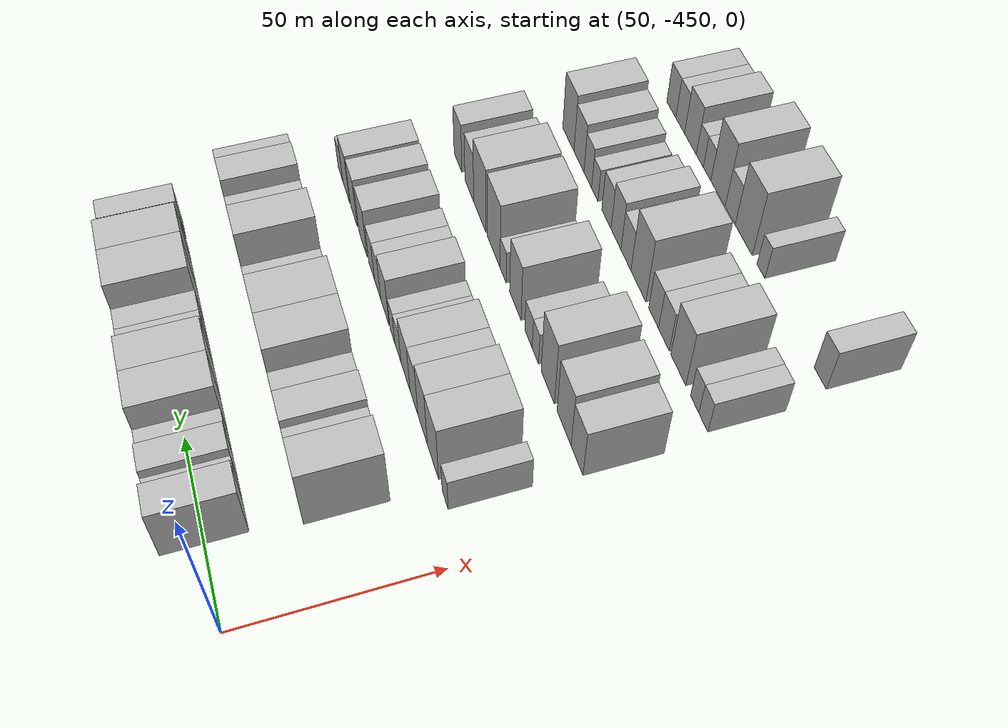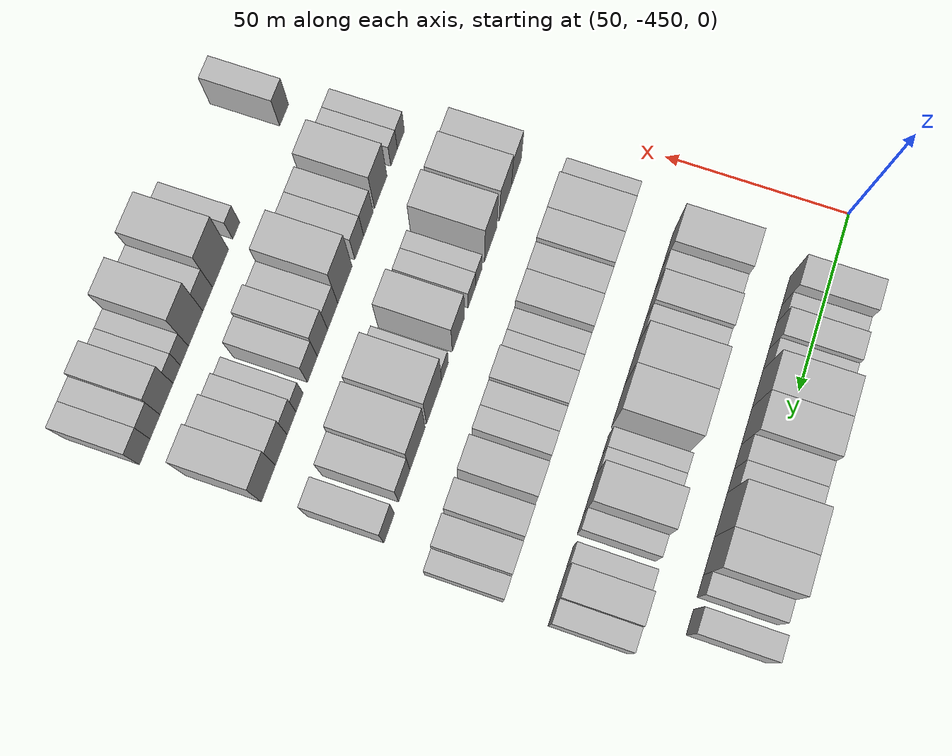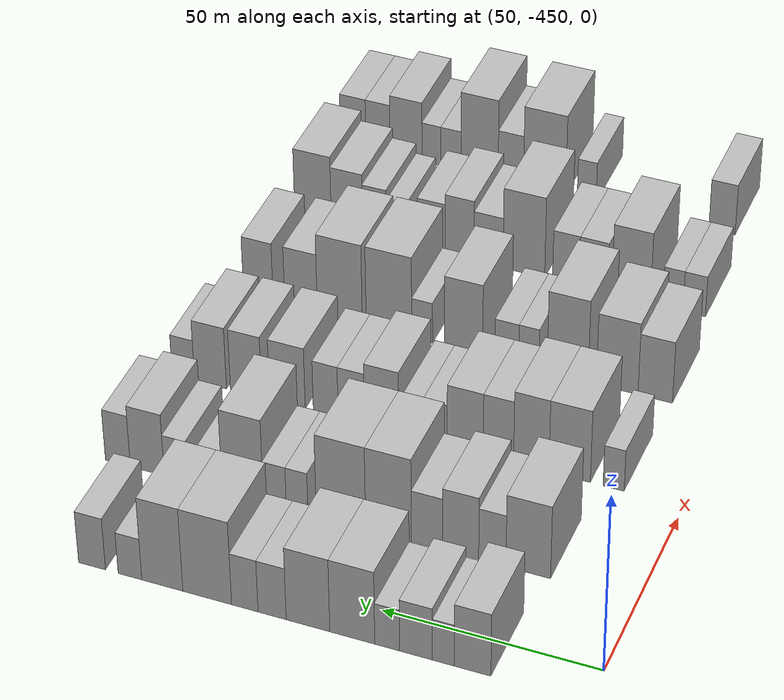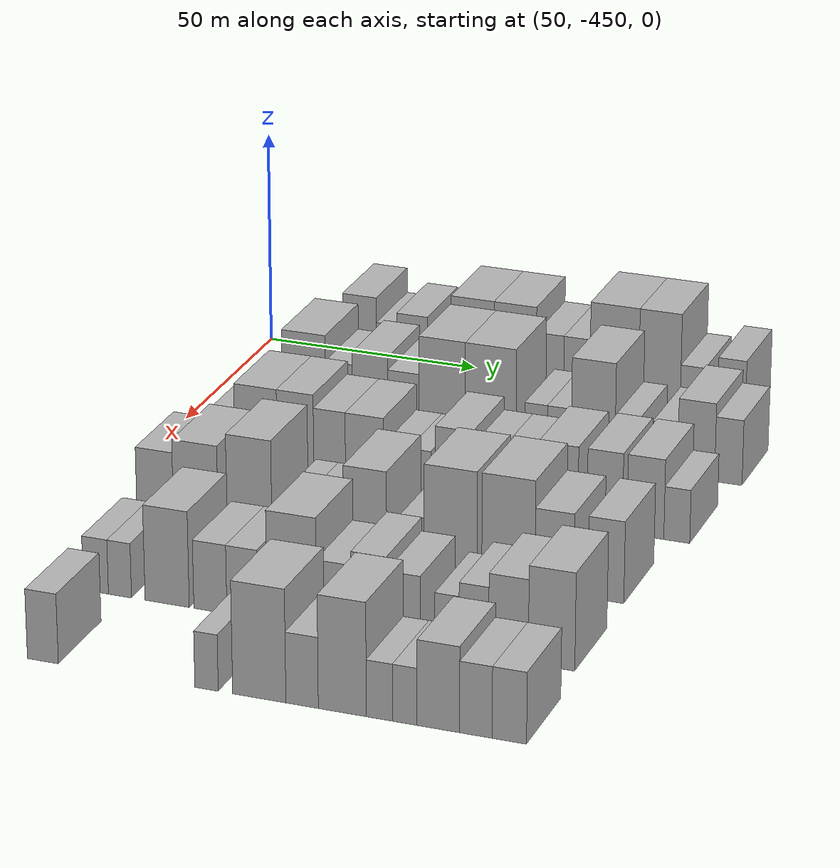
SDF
<sdf version="1.6">
 <world name="default">
  <model name="building_14">
   <static>1</static>
   <pose>50.0000 -424.3038 0 0.000000 0.000000 0.000000</pose>
   <link name="link">
    <pose>0 0 9.00 0 0 0</pose>
    <collision name="collision"><geometry><box><size>20.0000 8.2097 18.0000</size></box></geometry></collision>
    <visual name="visual">
     <cast_shadows>0</cast_shadows>
     <geometry><box><size>20.0000 8.2097 18.0000</size></box></geometry>
     <material>
      <script>
       <uri>model://HANNAS_wall/materials/scripts</uri>
       <uri>model://HANNAS_wall/materials/textures</uri>
       <name>vrc/HANNAS_wall</name>
      </script>
     </material>
    </visual>
   </link>
  </model>
  <model name="building_15">
   <static>1</static>
   <pose>50.0000 -417.7382 0 0.000000 0.000000 0.000000</pose>
   <link name="link">
    <pose>0 0 6.00 0 0 0</pose>
    <collision name="collision"><geometry><box><size>20.0000 4.9214 12.0000</size></box></geometry></collision>
    <visual name="visual">
     <cast_shadows>0</cast_shadows>
     <geometry><box><size>20.0000 4.9214 12.0000</size></box></geometry>
     <material>
      <script>
       <uri>model://HANNAS_wall/materials/scripts</uri>
       <uri>model://HANNAS_wall/materials/textures</uri>
       <name>vrc/HANNAS_wall</name>
      </script>
     </material>
    </visual>
   </link>
  </model>
  <model name="building_16">
   <static>1</static>
   <pose>50.0000 -411.5757 0 0.000000 0.000000 0.000000</pose>
   <link name="link">
    <pose>0 0 7.50 0 0 0</pose>
    <collision name="collision"><geometry><box><size>20.0000 7.4037 15.0000</size></box></geometry></collision>
    <visual name="visual">
     <cast_shadows>0</cast_shadows>
     <geometry><box><size>20.0000 7.4037 15.0000</size></box></geometry>
     <material>
      <script>
       <uri>model://HANNAS_wall/materials/scripts</uri>
       <uri>model://HANNAS_wall/materials/textures</uri>
       <name>vrc/HANNAS_wall</name>
      </script>
     </material>
    </visual>
   </link>
  </model>
  <model name="building_17">
   <static>1</static>
   <pose>50.0000 -405.0557 0 0.000000 0.000000 0.000000</pose>
   <link name="link">
    <pose>0 0 6.00 0 0 0</pose>
    <collision name="collision"><geometry><box><size>20.0000 5.6362 12.0000</size></box></geometry></collision>
    <visual name="visual">
     <cast_shadows>0</cast_shadows>
     <geometry><box><size>20.0000 5.6362 12.0000</size></box></geometry>
     <material>
      <script>
       <uri>model://HANNAS_wall/materials/scripts</uri>
       <uri>model://HANNAS_wall/materials/textures</uri>
       <name>vrc/HANNAS_wall</name>
      </script>
     </material>
    </visual>
   </link>
  </model>
  <model name="building_18">
   <static>1</static>
   <pose>50.0000 -397.1059 0 0.000000 0.000000 0.000000</pose>
   <link name="link">
    <pose>0 0 10.50 0 0 0</pose>
    <collision name="collision"><geometry><box><size>20.0000 10.2633 21.0000</size></box></geometry></collision>
    <visual name="visual">
     <cast_shadows>0</cast_shadows>
     <geometry><box><size>20.0000 10.2633 21.0000</size></box></geometry>
     <material>
      <script>
       <uri>model://HANNAS_wall/materials/scripts</uri>
       <uri>model://HANNAS_wall/materials/textures</uri>
       <name>vrc/HANNAS_wall</name>
      </script>
     </material>
    </visual>
   </link>
  </model>
  <model name="building_19">
   <static>1</static>
   <pose>50.0000 -386.9578 0 0.000000 0.000000 0.000000</pose>
   <link name="link">
    <pose>0 0 10.50 0 0 0</pose>
    <collision name="collision"><geometry><box><size>20.0000 10.0329 21.0000</size></box></geometry></collision>
    <visual name="visual">
     <cast_shadows>0</cast_shadows>
     <geometry><box><size>20.0000 10.0329 21.0000</size></box></geometry>
     <material>
      <script>
       <uri>model://HANNAS_wall/materials/scripts</uri>
       <uri>model://HANNAS_wall/materials/textures</uri>
       <name>vrc/HANNAS_wall</name>
      </script>
     </material>
    </visual>
   </link>
  </model>
  <model name="building_20">
   <static>1</static>
   <pose>50.0000 -378.6762 0 0.000000 0.000000 0.000000</pose>
   <link name="link">
    <pose>0 0 7.50 0 0 0</pose>
    <collision name="collision"><geometry><box><size>20.0000 6.5304 15.0000</size></box></geometry></collision>
    <visual name="visual">
     <cast_shadows>0</cast_shadows>
     <geometry><box><size>20.0000 6.5304 15.0000</size></box></geometry>
     <material>
      <script>
       <uri>model://HANNAS_wall/materials/scripts</uri>
       <uri>model://HANNAS_wall/materials/textures</uri>
       <name>vrc/HANNAS_wall</name>
      </script>
     </material>
    </visual>
   </link>
  </model>
  <model name="building_21">
   <static>1</static>
   <pose>50.0000 -372.3386 0 0.000000 0.000000 0.000000</pose>
   <link name="link">
    <pose>0 0 7.50 0 0 0</pose>
    <collision name="collision"><geometry><box><size>20.0000 6.1447 15.0000</size></box></geometry></collision>
    <visual name="visual">
     <cast_shadows>0</cast_shadows>
     <geometry><box><size>20.0000 6.1447 15.0000</size></box></geometry>
     <material>
      <script>
       <uri>model://HANNAS_wall/materials/scripts</uri>
       <uri>model://HANNAS_wall/materials/textures</uri>
       <name>vrc/HANNAS_wall</name>
      </script>
     </material>
    </visual>
   </link>
  </model>
  <model name="building_22">
   <static>1</static>
   <pose>50.0000 -363.5620 0 0.000000 0.000000 0.000000</pose>
   <link name="link">
    <pose>0 0 12.00 0 0 0</pose>
    <collision name="collision"><geometry><box><size>20.0000 11.4085 24.0000</size></box></geometry></collision>
    <visual name="visual">
     <cast_shadows>0</cast_shadows>
     <geometry><box><size>20.0000 11.4085 24.0000</size></box></geometry>
     <material>
      <script>
       <uri>model://HANNAS_wall/materials/scripts</uri>
       <uri>model://HANNAS_wall/materials/textures</uri>
       <name>vrc/HANNAS_wall</name>
      </script>
     </material>
    </visual>
   </link>
  </model>
  <model name="building_23">
   <static>1</static>
   <pose>50.0000 -353.0114 0 0.000000 0.000000 0.000000</pose>
   <link name="link">
    <pose>0 0 12.00 0 0 0</pose>
    <collision name="collision"><geometry><box><size>20.0000 9.6928 24.0000</size></box></geometry></collision>
    <visual name="visual">
     <cast_shadows>0</cast_shadows>
     <geometry><box><size>20.0000 9.6928 24.0000</size></box></geometry>
     <material>
      <script>
       <uri>model://HANNAS_wall/materials/scripts</uri>
       <uri>model://HANNAS_wall/materials/textures</uri>
       <name>vrc/HANNAS_wall</name>
      </script>
     </material>
    </visual>
   </link>
  </model>
  <model name="building_24">
   <static>1</static>
   <pose>50.0000 -345.3561 0 0.000000 0.000000 0.000000</pose>
   <link name="link">
    <pose>0 0 6.00 0 0 0</pose>
    <collision name="collision"><geometry><box><size>20.0000 5.6176 12.0000</size></box></geometry></collision>
    <visual name="visual">
     <cast_shadows>0</cast_shadows>
     <geometry><box><size>20.0000 5.6176 12.0000</size></box></geometry>
     <material>
      <script>
       <uri>model://HANNAS_wall/materials/scripts</uri>
       <uri>model://HANNAS_wall/materials/textures</uri>
       <name>vrc/HANNAS_wall</name>
      </script>
     </material>
    </visual>
   </link>
  </model>
  <model name="building_25">
   <static>1</static>
   <pose>50.0000 -336.3392 0 0.000000 0.000000 0.000000</pose>
   <link name="link">
    <pose>0 0 7.50 0 0 0</pose>
    <collision name="collision"><geometry><box><size>20.0000 6.4162 15.0000</size></box></geometry></collision>
    <visual name="visual">
     <cast_shadows>0</cast_shadows>
     <geometry><box><size>20.0000 6.4162 15.0000</size></box></geometry>
     <material>
      <script>
       <uri>model://HANNAS_wall/materials/scripts</uri>
       <uri>model://HANNAS_wall/materials/textures</uri>
       <name>vrc/HANNAS_wall</name>
      </script>
     </material>
    </visual>
   </link>
  </model>
  <model name="building_133">
   <static>1</static>
   <pose>82.0000 -425.0646 0 0.000000 0.000000 0.000000</pose>
   <link name="link">
    <pose>0 0 10.50 0 0 0</pose>
    <collision name="collision"><geometry><box><size>20.0000 10.2524 21.0000</size></box></geometry></collision>
    <visual name="visual">
     <cast_shadows>0</cast_shadows>
     <geometry><box><size>20.0000 10.2524 21.0000</size></box></geometry>
     <material>
      <script>
       <uri>model://HANNAS_wall/materials/scripts</uri>
       <uri>model://HANNAS_wall/materials/textures</uri>
       <name>vrc/HANNAS_wall</name>
      </script>
     </material>
    </visual>
   </link>
  </model>
  <model name="building_134">
   <static>1</static>
   <pose>82.0000 -416.7917 0 0.000000 0.000000 0.000000</pose>
   <link name="link">
    <pose>0 0 7.50 0 0 0</pose>
    <collision name="collision"><geometry><box><size>20.0000 6.2935 15.0000</size></box></geometry></collision>
    <visual name="visual">
     <cast_shadows>0</cast_shadows>
     <geometry><box><size>20.0000 6.2935 15.0000</size></box></geometry>
     <material>
      <script>
       <uri>model://HANNAS_wall/materials/scripts</uri>
       <uri>model://HANNAS_wall/materials/textures</uri>
       <name>vrc/HANNAS_wall</name>
      </script>
     </material>
    </visual>
   </link>
  </model>
  <model name="building_135">
   <static>1</static>
   <pose>82.0000 -409.4505 0 0.000000 0.000000 0.000000</pose>
   <link name="link">
    <pose>0 0 9.00 0 0 0</pose>
    <collision name="collision"><geometry><box><size>20.0000 8.3888 18.0000</size></box></geometry></collision>
    <visual name="visual">
     <cast_shadows>0</cast_shadows>
     <geometry><box><size>20.0000 8.3888 18.0000</size></box></geometry>
     <material>
      <script>
       <uri>model://HANNAS_wall/materials/scripts</uri>
       <uri>model://HANNAS_wall/materials/textures</uri>
       <name>vrc/HANNAS_wall</name>
      </script>
     </material>
    </visual>
   </link>
  </model>
  <model name="building_136">
   <static>1</static>
   <pose>82.0000 -401.6182 0 0.000000 0.000000 0.000000</pose>
   <link name="link">
    <pose>0 0 7.50 0 0 0</pose>
    <collision name="collision"><geometry><box><size>20.0000 7.2760 15.0000</size></box></geometry></collision>
    <visual name="visual">
     <cast_shadows>0</cast_shadows>
     <geometry><box><size>20.0000 7.2760 15.0000</size></box></geometry>
     <material>
      <script>
       <uri>model://HANNAS_wall/materials/scripts</uri>
       <uri>model://HANNAS_wall/materials/textures</uri>
       <name>vrc/HANNAS_wall</name>
      </script>
     </material>
    </visual>
   </link>
  </model>
  <model name="building_137">
   <static>1</static>
   <pose>82.0000 -392.6150 0 0.000000 0.000000 0.000000</pose>
   <link name="link">
    <pose>0 0 12.00 0 0 0</pose>
    <collision name="collision"><geometry><box><size>20.0000 10.7304 24.0000</size></box></geometry></collision>
    <visual name="visual">
     <cast_shadows>0</cast_shadows>
     <geometry><box><size>20.0000 10.7304 24.0000</size></box></geometry>
     <material>
      <script>
       <uri>model://HANNAS_wall/materials/scripts</uri>
       <uri>model://HANNAS_wall/materials/textures</uri>
       <name>vrc/HANNAS_wall</name>
      </script>
     </material>
    </visual>
   </link>
  </model>
  <model name="building_138">
   <static>1</static>
   <pose>82.0000 -381.3998 0 0.000000 0.000000 0.000000</pose>
   <link name="link">
    <pose>0 0 12.00 0 0 0</pose>
    <collision name="collision"><geometry><box><size>20.0000 11.7000 24.0000</size></box></geometry></collision>
    <visual name="visual">
     <cast_shadows>0</cast_shadows>
     <geometry><box><size>20.0000 11.7000 24.0000</size></box></geometry>
     <material>
      <script>
       <uri>model://HANNAS_wall/materials/scripts</uri>
       <uri>model://HANNAS_wall/materials/textures</uri>
       <name>vrc/HANNAS_wall</name>
      </script>
     </material>
    </visual>
   </link>
  </model>
  <model name="building_139">
   <static>1</static>
   <pose>82.0000 -370.9697 0 0.000000 0.000000 0.000000</pose>
   <link name="link">
    <pose>0 0 6.00 0 0 0</pose>
    <collision name="collision"><geometry><box><size>20.0000 5.1601 12.0000</size></box></geometry></collision>
    <visual name="visual">
     <cast_shadows>0</cast_shadows>
     <geometry><box><size>20.0000 5.1601 12.0000</size></box></geometry>
     <material>
      <script>
       <uri>model://HANNAS_wall/materials/scripts</uri>
       <uri>model://HANNAS_wall/materials/textures</uri>
       <name>vrc/HANNAS_wall</name>
      </script>
     </material>
    </visual>
   </link>
  </model>
  <model name="building_140">
   <static>1</static>
   <pose>82.0000 -365.6521 0 0.000000 0.000000 0.000000</pose>
   <link name="link">
    <pose>0 0 6.00 0 0 0</pose>
    <collision name="collision"><geometry><box><size>20.0000 5.4751 12.0000</size></box></geometry></collision>
    <visual name="visual">
     <cast_shadows>0</cast_shadows>
     <geometry><box><size>20.0000 5.4751 12.0000</size></box></geometry>
     <material>
      <script>
       <uri>model://HANNAS_wall/materials/scripts</uri>
       <uri>model://HANNAS_wall/materials/textures</uri>
       <name>vrc/HANNAS_wall</name>
      </script>
     </material>
    </visual>
   </link>
  </model>
  <model name="building_141">
   <static>1</static>
   <pose>82.0000 -357.9494 0 0.000000 0.000000 0.000000</pose>
   <link name="link">
    <pose>0 0 12.00 0 0 0</pose>
    <collision name="collision"><geometry><box><size>20.0000 9.9304 24.0000</size></box></geometry></collision>
    <visual name="visual">
     <cast_shadows>0</cast_shadows>
     <geometry><box><size>20.0000 9.9304 24.0000</size></box></geometry>
     <material>
      <script>
       <uri>model://HANNAS_wall/materials/scripts</uri>
       <uri>model://HANNAS_wall/materials/textures</uri>
       <name>vrc/HANNAS_wall</name>
      </script>
     </material>
    </visual>
   </link>
  </model>
  <model name="building_142">
   <static>1</static>
   <pose>82.0000 -350.2520 0 0.000000 0.000000 0.000000</pose>
   <link name="link">
    <pose>0 0 6.00 0 0 0</pose>
    <collision name="collision"><geometry><box><size>20.0000 5.4645 12.0000</size></box></geometry></collision>
    <visual name="visual">
     <cast_shadows>0</cast_shadows>
     <geometry><box><size>20.0000 5.4645 12.0000</size></box></geometry>
     <material>
      <script>
       <uri>model://HANNAS_wall/materials/scripts</uri>
       <uri>model://HANNAS_wall/materials/textures</uri>
       <name>vrc/HANNAS_wall</name>
      </script>
     </material>
    </visual>
   </link>
  </model>
  <model name="building_143">
   <static>1</static>
   <pose>82.0000 -341.6794 0 0.000000 0.000000 0.000000</pose>
   <link name="link">
    <pose>0 0 6.00 0 0 0</pose>
    <collision name="collision"><geometry><box><size>20.0000 5.6806 12.0000</size></box></geometry></collision>
    <visual name="visual">
     <cast_shadows>0</cast_shadows>
     <geometry><box><size>20.0000 5.6806 12.0000</size></box></geometry>
     <material>
      <script>
       <uri>model://HANNAS_wall/materials/scripts</uri>
       <uri>model://HANNAS_wall/materials/textures</uri>
       <name>vrc/HANNAS_wall</name>
      </script>
     </material>
    </visual>
   </link>
  </model>
  <model name="building_144">
   <static>1</static>
   <pose>82.0000 -334.6959 0 0.000000 0.000000 0.000000</pose>
   <link name="link">
    <pose>0 0 9.00 0 0 0</pose>
    <collision name="collision"><geometry><box><size>20.0000 8.2864 18.0000</size></box></geometry></collision>
    <visual name="visual">
     <cast_shadows>0</cast_shadows>
     <geometry><box><size>20.0000 8.2864 18.0000</size></box></geometry>
     <material>
      <script>
       <uri>model://HANNAS_wall/materials/scripts</uri>
       <uri>model://HANNAS_wall/materials/textures</uri>
       <name>vrc/HANNAS_wall</name>
      </script>
     </material>
    </visual>
   </link>
  </model>
  <model name="building_145">
   <static>1</static>
   <pose>82.0000 -327.4932 0 0.000000 0.000000 0.000000</pose>
   <link name="link">
    <pose>0 0 7.50 0 0 0</pose>
    <collision name="collision"><geometry><box><size>20.0000 6.1190 15.0000</size></box></geometry></collision>
    <visual name="visual">
     <cast_shadows>0</cast_shadows>
     <geometry><box><size>20.0000 6.1190 15.0000</size></box></geometry>
     <material>
      <script>
       <uri>model://HANNAS_wall/materials/scripts</uri>
       <uri>model://HANNAS_wall/materials/textures</uri>
       <name>vrc/HANNAS_wall</name>
      </script>
     </material>
    </visual>
   </link>
  </model>
  <model name="building_257">
   <static>1</static>
   <pose>114.0000 -433.5939 0 0.000000 0.000000 0.000000</pose>
   <link name="link">
    <pose>0 0 6.00 0 0 0</pose>
    <collision name="collision"><geometry><box><size>20.0000 4.9375 12.0000</size></box></geometry></collision>
    <visual name="visual">
     <cast_shadows>0</cast_shadows>
     <geometry><box><size>20.0000 4.9375 12.0000</size></box></geometry>
     <material>
      <script>
       <uri>model://HANNAS_wall/materials/scripts</uri>
       <uri>model://HANNAS_wall/materials/textures</uri>
       <name>vrc/HANNAS_wall</name>
      </script>
     </material>
    </visual>
   </link>
  </model>
  <model name="building_258">
   <static>1</static>
   <pose>114.0000 -423.2410 0 0.000000 0.000000 0.000000</pose>
   <link name="link">
    <pose>0 0 10.50 0 0 0</pose>
    <collision name="collision"><geometry><box><size>20.0000 9.7682 21.0000</size></box></geometry></collision>
    <visual name="visual">
     <cast_shadows>0</cast_shadows>
     <geometry><box><size>20.0000 9.7682 21.0000</size></box></geometry>
     <material>
      <script>
       <uri>model://HANNAS_wall/materials/scripts</uri>
       <uri>model://HANNAS_wall/materials/textures</uri>
       <name>vrc/HANNAS_wall</name>
      </script>
     </material>
    </visual>
   </link>
  </model>
  <model name="building_259">
   <static>1</static>
   <pose>114.0000 -414.1509 0 0.000000 0.000000 0.000000</pose>
   <link name="link">
    <pose>0 0 10.50 0 0 0</pose>
    <collision name="collision"><geometry><box><size>20.0000 8.4120 21.0000</size></box></geometry></collision>
    <visual name="visual">
     <cast_shadows>0</cast_shadows>
     <geometry><box><size>20.0000 8.4120 21.0000</size></box></geometry>
     <material>
      <script>
       <uri>model://HANNAS_wall/materials/scripts</uri>
       <uri>model://HANNAS_wall/materials/textures</uri>
       <name>vrc/HANNAS_wall</name>
      </script>
     </material>
    </visual>
   </link>
  </model>
  <model name="building_260">
   <static>1</static>
   <pose>114.0000 -406.3233 0 0.000000 0.000000 0.000000</pose>
   <link name="link">
    <pose>0 0 9.00 0 0 0</pose>
    <collision name="collision"><geometry><box><size>20.0000 7.2432 18.0000</size></box></geometry></collision>
    <visual name="visual">
     <cast_shadows>0</cast_shadows>
     <geometry><box><size>20.0000 7.2432 18.0000</size></box></geometry>
     <material>
      <script>
       <uri>model://HANNAS_wall/materials/scripts</uri>
       <uri>model://HANNAS_wall/materials/textures</uri>
       <name>vrc/HANNAS_wall</name>
      </script>
     </material>
    </visual>
   </link>
  </model>
  <model name="building_261">
   <static>1</static>
   <pose>114.0000 -398.3839 0 0.000000 0.000000 0.000000</pose>
   <link name="link">
    <pose>0 0 9.00 0 0 0</pose>
    <collision name="collision"><geometry><box><size>20.0000 8.6355 18.0000</size></box></geometry></collision>
    <visual name="visual">
     <cast_shadows>0</cast_shadows>
     <geometry><box><size>20.0000 8.6355 18.0000</size></box></geometry>
     <material>
      <script>
       <uri>model://HANNAS_wall/materials/scripts</uri>
       <uri>model://HANNAS_wall/materials/textures</uri>
       <name>vrc/HANNAS_wall</name>
      </script>
     </material>
    </visual>
   </link>
  </model>
  <model name="building_262">
   <static>1</static>
   <pose>114.0000 -391.1399 0 0.000000 0.000000 0.000000</pose>
   <link name="link">
    <pose>0 0 6.00 0 0 0</pose>
    <collision name="collision"><geometry><box><size>20.0000 5.8525 12.0000</size></box></geometry></collision>
    <visual name="visual">
     <cast_shadows>0</cast_shadows>
     <geometry><box><size>20.0000 5.8525 12.0000</size></box></geometry>
     <material>
      <script>
       <uri>model://HANNAS_wall/materials/scripts</uri>
       <uri>model://HANNAS_wall/materials/textures</uri>
       <name>vrc/HANNAS_wall</name>
      </script>
     </material>
    </visual>
   </link>
  </model>
  <model name="building_263">
   <static>1</static>
   <pose>114.0000 -385.8036 0 0.000000 0.000000 0.000000</pose>
   <link name="link">
    <pose>0 0 6.00 0 0 0</pose>
    <collision name="collision"><geometry><box><size>20.0000 4.8201 12.0000</size></box></geometry></collision>
    <visual name="visual">
     <cast_shadows>0</cast_shadows>
     <geometry><box><size>20.0000 4.8201 12.0000</size></box></geometry>
     <material>
      <script>
       <uri>model://HANNAS_wall/materials/scripts</uri>
       <uri>model://HANNAS_wall/materials/textures</uri>
       <name>vrc/HANNAS_wall</name>
      </script>
     </material>
    </visual>
   </link>
  </model>
  <model name="building_264">
   <static>1</static>
   <pose>114.0000 -378.2037 0 0.000000 0.000000 0.000000</pose>
   <link name="link">
    <pose>0 0 9.00 0 0 0</pose>
    <collision name="collision"><geometry><box><size>20.0000 8.3797 18.0000</size></box></geometry></collision>
    <visual name="visual">
     <cast_shadows>0</cast_shadows>
     <geometry><box><size>20.0000 8.3797 18.0000</size></box></geometry>
     <material>
      <script>
       <uri>model://HANNAS_wall/materials/scripts</uri>
       <uri>model://HANNAS_wall/materials/textures</uri>
       <name>vrc/HANNAS_wall</name>
      </script>
     </material>
    </visual>
   </link>
  </model>
  <model name="building_265">
   <static>1</static>
   <pose>114.0000 -370.7893 0 0.000000 0.000000 0.000000</pose>
   <link name="link">
    <pose>0 0 7.50 0 0 0</pose>
    <collision name="collision"><geometry><box><size>20.0000 6.4493 15.0000</size></box></geometry></collision>
    <visual name="visual">
     <cast_shadows>0</cast_shadows>
     <geometry><box><size>20.0000 6.4493 15.0000</size></box></geometry>
     <material>
      <script>
       <uri>model://HANNAS_wall/materials/scripts</uri>
       <uri>model://HANNAS_wall/materials/textures</uri>
       <name>vrc/HANNAS_wall</name>
      </script>
     </material>
    </visual>
   </link>
  </model>
  <model name="building_266">
   <static>1</static>
   <pose>114.0000 -364.5216 0 0.000000 0.000000 0.000000</pose>
   <link name="link">
    <pose>0 0 7.50 0 0 0</pose>
    <collision name="collision"><geometry><box><size>20.0000 6.0861 15.0000</size></box></geometry></collision>
    <visual name="visual">
     <cast_shadows>0</cast_shadows>
     <geometry><box><size>20.0000 6.0861 15.0000</size></box></geometry>
     <material>
      <script>
       <uri>model://HANNAS_wall/materials/scripts</uri>
       <uri>model://HANNAS_wall/materials/textures</uri>
       <name>vrc/HANNAS_wall</name>
      </script>
     </material>
    </visual>
   </link>
  </model>
  <model name="building_267">
   <static>1</static>
   <pose>114.0000 -355.0828 0 0.000000 0.000000 0.000000</pose>
   <link name="link">
    <pose>0 0 9.00 0 0 0</pose>
    <collision name="collision"><geometry><box><size>20.0000 8.7916 18.0000</size></box></geometry></collision>
    <visual name="visual">
     <cast_shadows>0</cast_shadows>
     <geometry><box><size>20.0000 8.7916 18.0000</size></box></geometry>
     <material>
      <script>
       <uri>model://HANNAS_wall/materials/scripts</uri>
       <uri>model://HANNAS_wall/materials/textures</uri>
       <name>vrc/HANNAS_wall</name>
      </script>
     </material>
    </visual>
   </link>
  </model>
  <model name="building_268">
   <static>1</static>
   <pose>114.0000 -344.8017 0 0.000000 0.000000 0.000000</pose>
   <link name="link">
    <pose>0 0 9.00 0 0 0</pose>
    <collision name="collision"><geometry><box><size>20.0000 7.7705 18.0000</size></box></geometry></collision>
    <visual name="visual">
     <cast_shadows>0</cast_shadows>
     <geometry><box><size>20.0000 7.7705 18.0000</size></box></geometry>
     <material>
      <script>
       <uri>model://HANNAS_wall/materials/scripts</uri>
       <uri>model://HANNAS_wall/materials/textures</uri>
       <name>vrc/HANNAS_wall</name>
      </script>
     </material>
    </visual>
   </link>
  </model>
  <model name="building_269">
   <static>1</static>
   <pose>114.0000 -335.9017 0 0.000000 0.000000 0.000000</pose>
   <link name="link">
    <pose>0 0 9.00 0 0 0</pose>
    <collision name="collision"><geometry><box><size>20.0000 8.0297 18.0000</size></box></geometry></collision>
    <visual name="visual">
     <cast_shadows>0</cast_shadows>
     <geometry><box><size>20.0000 8.0297 18.0000</size></box></geometry>
     <material>
      <script>
       <uri>model://HANNAS_wall/materials/scripts</uri>
       <uri>model://HANNAS_wall/materials/textures</uri>
       <name>vrc/HANNAS_wall</name>
      </script>
     </material>
    </visual>
   </link>
  </model>
  <model name="building_270">
   <static>1</static>
   <pose>114.0000 -329.0785 0 0.000000 0.000000 0.000000</pose>
   <link name="link">
    <pose>0 0 6.00 0 0 0</pose>
    <collision name="collision"><geometry><box><size>20.0000 5.6167 12.0000</size></box></geometry></collision>
    <visual name="visual">
     <cast_shadows>0</cast_shadows>
     <geometry><box><size>20.0000 5.6167 12.0000</size></box></geometry>
     <material>
      <script>
       <uri>model://HANNAS_wall/materials/scripts</uri>
       <uri>model://HANNAS_wall/materials/textures</uri>
       <name>vrc/HANNAS_wall</name>
      </script>
     </material>
    </visual>
   </link>
  </model>
  <model name="building_381">
   <static>1</static>
   <pose>146.0000 -432.6744 0 0.000000 0.000000 0.000000</pose>
   <link name="link">
    <pose>0 0 9.00 0 0 0</pose>
    <collision name="collision"><geometry><box><size>20.0000 8.2898 18.0000</size></box></geometry></collision>
    <visual name="visual">
     <cast_shadows>0</cast_shadows>
     <geometry><box><size>20.0000 8.2898 18.0000</size></box></geometry>
     <material>
      <script>
       <uri>model://HANNAS_wall/materials/scripts</uri>
       <uri>model://HANNAS_wall/materials/textures</uri>
       <name>vrc/HANNAS_wall</name>
      </script>
     </material>
    </visual>
   </link>
  </model>
  <model name="building_382">
   <static>1</static>
   <pose>146.0000 -423.4884 0 0.000000 0.000000 0.000000</pose>
   <link name="link">
    <pose>0 0 10.50 0 0 0</pose>
    <collision name="collision"><geometry><box><size>20.0000 10.0822 21.0000</size></box></geometry></collision>
    <visual name="visual">
     <cast_shadows>0</cast_shadows>
     <geometry><box><size>20.0000 10.0822 21.0000</size></box></geometry>
     <material>
      <script>
       <uri>model://HANNAS_wall/materials/scripts</uri>
       <uri>model://HANNAS_wall/materials/textures</uri>
       <name>vrc/HANNAS_wall</name>
      </script>
     </material>
    </visual>
   </link>
  </model>
  <model name="building_383">
   <static>1</static>
   <pose>146.0000 -411.4409 0 0.000000 0.000000 0.000000</pose>
   <link name="link">
    <pose>0 0 12.00 0 0 0</pose>
    <collision name="collision"><geometry><box><size>20.0000 10.0129 24.0000</size></box></geometry></collision>
    <visual name="visual">
     <cast_shadows>0</cast_shadows>
     <geometry><box><size>20.0000 10.0129 24.0000</size></box></geometry>
     <material>
      <script>
       <uri>model://HANNAS_wall/materials/scripts</uri>
       <uri>model://HANNAS_wall/materials/textures</uri>
       <name>vrc/HANNAS_wall</name>
      </script>
     </material>
    </visual>
   </link>
  </model>
  <model name="building_384">
   <static>1</static>
   <pose>146.0000 -401.9492 0 0.000000 0.000000 0.000000</pose>
   <link name="link">
    <pose>0 0 6.00 0 0 0</pose>
    <collision name="collision"><geometry><box><size>20.0000 4.9704 12.0000</size></box></geometry></collision>
    <visual name="visual">
     <cast_shadows>0</cast_shadows>
     <geometry><box><size>20.0000 4.9704 12.0000</size></box></geometry>
     <material>
      <script>
       <uri>model://HANNAS_wall/materials/scripts</uri>
       <uri>model://HANNAS_wall/materials/textures</uri>
       <name>vrc/HANNAS_wall</name>
      </script>
     </material>
    </visual>
   </link>
  </model>
  <model name="building_385">
   <static>1</static>
   <pose>146.0000 -396.5137 0 0.000000 0.000000 0.000000</pose>
   <link name="link">
    <pose>0 0 6.00 0 0 0</pose>
    <collision name="collision"><geometry><box><size>20.0000 5.9006 12.0000</size></box></geometry></collision>
    <visual name="visual">
     <cast_shadows>0</cast_shadows>
     <geometry><box><size>20.0000 5.9006 12.0000</size></box></geometry>
     <material>
      <script>
       <uri>model://HANNAS_wall/materials/scripts</uri>
       <uri>model://HANNAS_wall/materials/textures</uri>
       <name>vrc/HANNAS_wall</name>
      </script>
     </material>
    </visual>
   </link>
  </model>
  <model name="building_386">
   <static>1</static>
   <pose>146.0000 -385.8481 0 0.000000 0.000000 0.000000</pose>
   <link name="link">
    <pose>0 0 10.50 0 0 0</pose>
    <collision name="collision"><geometry><box><size>20.0000 9.4307 21.0000</size></box></geometry></collision>
    <visual name="visual">
     <cast_shadows>0</cast_shadows>
     <geometry><box><size>20.0000 9.4307 21.0000</size></box></geometry>
     <material>
      <script>
       <uri>model://HANNAS_wall/materials/scripts</uri>
       <uri>model://HANNAS_wall/materials/textures</uri>
       <name>vrc/HANNAS_wall</name>
      </script>
     </material>
    </visual>
   </link>
  </model>
  <model name="building_387">
   <static>1</static>
   <pose>146.0000 -375.5461 0 0.000000 0.000000 0.000000</pose>
   <link name="link">
    <pose>0 0 6.00 0 0 0</pose>
    <collision name="collision"><geometry><box><size>20.0000 5.1732 12.0000</size></box></geometry></collision>
    <visual name="visual">
     <cast_shadows>0</cast_shadows>
     <geometry><box><size>20.0000 5.1732 12.0000</size></box></geometry>
     <material>
      <script>
       <uri>model://HANNAS_wall/materials/scripts</uri>
       <uri>model://HANNAS_wall/materials/textures</uri>
       <name>vrc/HANNAS_wall</name>
      </script>
     </material>
    </visual>
   </link>
  </model>
  <model name="building_388">
   <static>1</static>
   <pose>146.0000 -367.2390 0 0.000000 0.000000 0.000000</pose>
   <link name="link">
    <pose>0 0 12.00 0 0 0</pose>
    <collision name="collision"><geometry><box><size>20.0000 11.4408 24.0000</size></box></geometry></collision>
    <visual name="visual">
     <cast_shadows>0</cast_shadows>
     <geometry><box><size>20.0000 11.4408 24.0000</size></box></geometry>
     <material>
      <script>
       <uri>model://HANNAS_wall/materials/scripts</uri>
       <uri>model://HANNAS_wall/materials/textures</uri>
       <name>vrc/HANNAS_wall</name>
      </script>
     </material>
    </visual>
   </link>
  </model>
  <model name="building_389">
   <static>1</static>
   <pose>146.0000 -354.8342 0 0.000000 0.000000 0.000000</pose>
   <link name="link">
    <pose>0 0 12.00 0 0 0</pose>
    <collision name="collision"><geometry><box><size>20.0000 11.3689 24.0000</size></box></geometry></collision>
    <visual name="visual">
     <cast_shadows>0</cast_shadows>
     <geometry><box><size>20.0000 11.3689 24.0000</size></box></geometry>
     <material>
      <script>
       <uri>model://HANNAS_wall/materials/scripts</uri>
       <uri>model://HANNAS_wall/materials/textures</uri>
       <name>vrc/HANNAS_wall</name>
      </script>
     </material>
    </visual>
   </link>
  </model>
  <model name="building_390">
   <static>1</static>
   <pose>146.0000 -345.0014 0 0.000000 0.000000 0.000000</pose>
   <link name="link">
    <pose>0 0 9.00 0 0 0</pose>
    <collision name="collision"><geometry><box><size>20.0000 8.2967 18.0000</size></box></geometry></collision>
    <visual name="visual">
     <cast_shadows>0</cast_shadows>
     <geometry><box><size>20.0000 8.2967 18.0000</size></box></geometry>
     <material>
      <script>
       <uri>model://HANNAS_wall/materials/scripts</uri>
       <uri>model://HANNAS_wall/materials/textures</uri>
       <name>vrc/HANNAS_wall</name>
      </script>
     </material>
    </visual>
   </link>
  </model>
  <model name="building_391">
   <static>1</static>
   <pose>146.0000 -334.0626 0 0.000000 0.000000 0.000000</pose>
   <link name="link">
    <pose>0 0 9.00 0 0 0</pose>
    <collision name="collision"><geometry><box><size>20.0000 7.5808 18.0000</size></box></geometry></collision>
    <visual name="visual">
     <cast_shadows>0</cast_shadows>
     <geometry><box><size>20.0000 7.5808 18.0000</size></box></geometry>
     <material>
      <script>
       <uri>model://HANNAS_wall/materials/scripts</uri>
       <uri>model://HANNAS_wall/materials/textures</uri>
       <name>vrc/HANNAS_wall</name>
      </script>
     </material>
    </visual>
   </link>
  </model>
  <model name="building_499">
   <static>1</static>
   <pose>178.0000 -431.6945 0 0.000000 0.000000 0.000000</pose>
   <link name="link">
    <pose>0 0 6.00 0 0 0</pose>
    <collision name="collision"><geometry><box><size>20.0000 5.5303 12.0000</size></box></geometry></collision>
    <visual name="visual">
     <cast_shadows>0</cast_shadows>
     <geometry><box><size>20.0000 5.5303 12.0000</size></box></geometry>
     <material>
      <script>
       <uri>model://HANNAS_wall/materials/scripts</uri>
       <uri>model://HANNAS_wall/materials/textures</uri>
       <name>vrc/HANNAS_wall</name>
      </script>
     </material>
    </visual>
   </link>
  </model>
  <model name="building_500">
   <static>1</static>
   <pose>178.0000 -426.3886 0 0.000000 0.000000 0.000000</pose>
   <link name="link">
    <pose>0 0 6.00 0 0 0</pose>
    <collision name="collision"><geometry><box><size>20.0000 5.0814 12.0000</size></box></geometry></collision>
    <visual name="visual">
     <cast_shadows>0</cast_shadows>
     <geometry><box><size>20.0000 5.0814 12.0000</size></box></geometry>
     <material>
      <script>
       <uri>model://HANNAS_wall/materials/scripts</uri>
       <uri>model://HANNAS_wall/materials/textures</uri>
       <name>vrc/HANNAS_wall</name>
      </script>
     </material>
    </visual>
   </link>
  </model>
  <model name="building_501">
   <static>1</static>
   <pose>178.0000 -416.0276 0 0.000000 0.000000 0.000000</pose>
   <link name="link">
    <pose>0 0 10.50 0 0 0</pose>
    <collision name="collision"><geometry><box><size>20.0000 9.6406 21.0000</size></box></geometry></collision>
    <visual name="visual">
     <cast_shadows>0</cast_shadows>
     <geometry><box><size>20.0000 9.6406 21.0000</size></box></geometry>
     <material>
      <script>
       <uri>model://HANNAS_wall/materials/scripts</uri>
       <uri>model://HANNAS_wall/materials/textures</uri>
       <name>vrc/HANNAS_wall</name>
      </script>
     </material>
    </visual>
   </link>
  </model>
  <model name="building_502">
   <static>1</static>
   <pose>178.0000 -406.6281 0 0.000000 0.000000 0.000000</pose>
   <link name="link">
    <pose>0 0 7.50 0 0 0</pose>
    <collision name="collision"><geometry><box><size>20.0000 7.1586 15.0000</size></box></geometry></collision>
    <visual name="visual">
     <cast_shadows>0</cast_shadows>
     <geometry><box><size>20.0000 7.1586 15.0000</size></box></geometry>
     <material>
      <script>
       <uri>model://HANNAS_wall/materials/scripts</uri>
       <uri>model://HANNAS_wall/materials/textures</uri>
       <name>vrc/HANNAS_wall</name>
      </script>
     </material>
    </visual>
   </link>
  </model>
  <model name="building_503">
   <static>1</static>
   <pose>178.0000 -399.6997 0 0.000000 0.000000 0.000000</pose>
   <link name="link">
    <pose>0 0 7.50 0 0 0</pose>
    <collision name="collision"><geometry><box><size>20.0000 6.6982 15.0000</size></box></geometry></collision>
    <visual name="visual">
     <cast_shadows>0</cast_shadows>
     <geometry><box><size>20.0000 6.6982 15.0000</size></box></geometry>
     <material>
      <script>
       <uri>model://HANNAS_wall/materials/scripts</uri>
       <uri>model://HANNAS_wall/materials/textures</uri>
       <name>vrc/HANNAS_wall</name>
      </script>
     </material>
    </visual>
   </link>
  </model>
  <model name="building_504">
   <static>1</static>
   <pose>178.0000 -389.0686 0 0.000000 0.000000 0.000000</pose>
   <link name="link">
    <pose>0 0 12.00 0 0 0</pose>
    <collision name="collision"><geometry><box><size>20.0000 10.5639 24.0000</size></box></geometry></collision>
    <visual name="visual">
     <cast_shadows>0</cast_shadows>
     <geometry><box><size>20.0000 10.5639 24.0000</size></box></geometry>
     <material>
      <script>
       <uri>model://HANNAS_wall/materials/scripts</uri>
       <uri>model://HANNAS_wall/materials/textures</uri>
       <name>vrc/HANNAS_wall</name>
      </script>
     </material>
    </visual>
   </link>
  </model>
  <model name="building_505">
   <static>1</static>
   <pose>178.0000 -380.0914 0 0.000000 0.000000 0.000000</pose>
   <link name="link">
    <pose>0 0 7.50 0 0 0</pose>
    <collision name="collision"><geometry><box><size>20.0000 7.3904 15.0000</size></box></geometry></collision>
    <visual name="visual">
     <cast_shadows>0</cast_shadows>
     <geometry><box><size>20.0000 7.3904 15.0000</size></box></geometry>
     <material>
      <script>
       <uri>model://HANNAS_wall/materials/scripts</uri>
       <uri>model://HANNAS_wall/materials/textures</uri>
       <name>vrc/HANNAS_wall</name>
      </script>
     </material>
    </visual>
   </link>
  </model>
  <model name="building_506">
   <static>1</static>
   <pose>178.0000 -372.6743 0 0.000000 0.000000 0.000000</pose>
   <link name="link">
    <pose>0 0 9.00 0 0 0</pose>
    <collision name="collision"><geometry><box><size>20.0000 7.4438 18.0000</size></box></geometry></collision>
    <visual name="visual">
     <cast_shadows>0</cast_shadows>
     <geometry><box><size>20.0000 7.4438 18.0000</size></box></geometry>
     <material>
      <script>
       <uri>model://HANNAS_wall/materials/scripts</uri>
       <uri>model://HANNAS_wall/materials/textures</uri>
       <name>vrc/HANNAS_wall</name>
      </script>
     </material>
    </visual>
   </link>
  </model>
  <model name="building_507">
   <static>1</static>
   <pose>178.0000 -365.4065 0 0.000000 0.000000 0.000000</pose>
   <link name="link">
    <pose>0 0 7.50 0 0 0</pose>
    <collision name="collision"><geometry><box><size>20.0000 7.0920 15.0000</size></box></geometry></collision>
    <visual name="visual">
     <cast_shadows>0</cast_shadows>
     <geometry><box><size>20.0000 7.0920 15.0000</size></box></geometry>
     <material>
      <script>
       <uri>model://HANNAS_wall/materials/scripts</uri>
       <uri>model://HANNAS_wall/materials/textures</uri>
       <name>vrc/HANNAS_wall</name>
      </script>
     </material>
    </visual>
   </link>
  </model>
  <model name="building_508">
   <static>1</static>
   <pose>178.0000 -356.3359 0 0.000000 0.000000 0.000000</pose>
   <link name="link">
    <pose>0 0 6.00 0 0 0</pose>
    <collision name="collision"><geometry><box><size>20.0000 5.0492 12.0000</size></box></geometry></collision>
    <visual name="visual">
     <cast_shadows>0</cast_shadows>
     <geometry><box><size>20.0000 5.0492 12.0000</size></box></geometry>
     <material>
      <script>
       <uri>model://HANNAS_wall/materials/scripts</uri>
       <uri>model://HANNAS_wall/materials/textures</uri>
       <name>vrc/HANNAS_wall</name>
      </script>
     </material>
    </visual>
   </link>
  </model>
  <model name="building_509">
   <static>1</static>
   <pose>178.0000 -350.7314 0 0.000000 0.000000 0.000000</pose>
   <link name="link">
    <pose>0 0 7.50 0 0 0</pose>
    <collision name="collision"><geometry><box><size>20.0000 6.1597 15.0000</size></box></geometry></collision>
    <visual name="visual">
     <cast_shadows>0</cast_shadows>
     <geometry><box><size>20.0000 6.1597 15.0000</size></box></geometry>
     <material>
      <script>
       <uri>model://HANNAS_wall/materials/scripts</uri>
       <uri>model://HANNAS_wall/materials/textures</uri>
       <name>vrc/HANNAS_wall</name>
      </script>
     </material>
    </visual>
   </link>
  </model>
  <model name="building_510">
   <static>1</static>
   <pose>178.0000 -343.5551 0 0.000000 0.000000 0.000000</pose>
   <link name="link">
    <pose>0 0 9.00 0 0 0</pose>
    <collision name="collision"><geometry><box><size>20.0000 8.1930 18.0000</size></box></geometry></collision>
    <visual name="visual">
     <cast_shadows>0</cast_shadows>
     <geometry><box><size>20.0000 8.1930 18.0000</size></box></geometry>
     <material>
      <script>
       <uri>model://HANNAS_wall/materials/scripts</uri>
       <uri>model://HANNAS_wall/materials/textures</uri>
       <name>vrc/HANNAS_wall</name>
      </script>
     </material>
    </visual>
   </link>
  </model>
  <model name="building_511">
   <static>1</static>
   <pose>178.0000 -334.6878 0 0.000000 0.000000 0.000000</pose>
   <link name="link">
    <pose>0 0 10.50 0 0 0</pose>
    <collision name="collision"><geometry><box><size>20.0000 9.5415 21.0000</size></box></geometry></collision>
    <visual name="visual">
     <cast_shadows>0</cast_shadows>
     <geometry><box><size>20.0000 9.5415 21.0000</size></box></geometry>
     <material>
      <script>
       <uri>model://HANNAS_wall/materials/scripts</uri>
       <uri>model://HANNAS_wall/materials/textures</uri>
       <name>vrc/HANNAS_wall</name>
      </script>
     </material>
    </visual>
   </link>
  </model>
  <model name="building_621">
   <static>1</static>
   <pose>210.0000 -428.3985 0 0.000000 0.000000 0.000000</pose>
   <link name="link">
    <pose>0 0 7.50 0 0 0</pose>
    <collision name="collision"><geometry><box><size>20.0000 6.6293 15.0000</size></box></geometry></collision>
    <visual name="visual">
     <cast_shadows>0</cast_shadows>
     <geometry><box><size>20.0000 6.6293 15.0000</size></box></geometry>
     <material>
      <script>
       <uri>model://HANNAS_wall/materials/scripts</uri>
       <uri>model://HANNAS_wall/materials/textures</uri>
       <name>vrc/HANNAS_wall</name>
      </script>
     </material>
    </visual>
   </link>
  </model>
  <model name="building_622">
   <static>1</static>
   <pose>210.0000 -393.7650 0 0.000000 0.000000 0.000000</pose>
   <link name="link">
    <pose>0 0 6.00 0 0 0</pose>
    <collision name="collision"><geometry><box><size>20.0000 4.8793 12.0000</size></box></geometry></collision>
    <visual name="visual">
     <cast_shadows>0</cast_shadows>
     <geometry><box><size>20.0000 4.8793 12.0000</size></box></geometry>
     <material>
      <script>
       <uri>model://HANNAS_wall/materials/scripts</uri>
       <uri>model://HANNAS_wall/materials/textures</uri>
       <name>vrc/HANNAS_wall</name>
      </script>
     </material>
    </visual>
   </link>
  </model>
  <model name="building_623">
   <static>1</static>
   <pose>210.0000 -382.8229 0 0.000000 0.000000 0.000000</pose>
   <link name="link">
    <pose>0 0 12.00 0 0 0</pose>
    <collision name="collision"><geometry><box><size>20.0000 11.0048 24.0000</size></box></geometry></collision>
    <visual name="visual">
     <cast_shadows>0</cast_shadows>
     <geometry><box><size>20.0000 11.0048 24.0000</size></box></geometry>
     <material>
      <script>
       <uri>model://HANNAS_wall/materials/scripts</uri>
       <uri>model://HANNAS_wall/materials/textures</uri>
       <name>vrc/HANNAS_wall</name>
      </script>
     </material>
    </visual>
   </link>
  </model>
  <model name="building_624">
   <static>1</static>
   <pose>210.0000 -373.9902 0 0.000000 0.000000 0.000000</pose>
   <link name="link">
    <pose>0 0 7.50 0 0 0</pose>
    <collision name="collision"><geometry><box><size>20.0000 6.6606 15.0000</size></box></geometry></collision>
    <visual name="visual">
     <cast_shadows>0</cast_shadows>
     <geometry><box><size>20.0000 6.6606 15.0000</size></box></geometry>
     <material>
      <script>
       <uri>model://HANNAS_wall/materials/scripts</uri>
       <uri>model://HANNAS_wall/materials/textures</uri>
       <name>vrc/HANNAS_wall</name>
      </script>
     </material>
    </visual>
   </link>
  </model>
  <model name="building_625">
   <static>1</static>
   <pose>210.0000 -365.7617 0 0.000000 0.000000 0.000000</pose>
   <link name="link">
    <pose>0 0 12.00 0 0 0</pose>
    <collision name="collision"><geometry><box><size>20.0000 9.7965 24.0000</size></box></geometry></collision>
    <visual name="visual">
     <cast_shadows>0</cast_shadows>
     <geometry><box><size>20.0000 9.7965 24.0000</size></box></geometry>
     <material>
      <script>
       <uri>model://HANNAS_wall/materials/scripts</uri>
       <uri>model://HANNAS_wall/materials/textures</uri>
       <name>vrc/HANNAS_wall</name>
      </script>
     </material>
    </visual>
   </link>
  </model>
  <model name="building_626">
   <static>1</static>
   <pose>210.0000 -358.2188 0 0.000000 0.000000 0.000000</pose>
   <link name="link">
    <pose>0 0 6.00 0 0 0</pose>
    <collision name="collision"><geometry><box><size>20.0000 5.2893 12.0000</size></box></geometry></collision>
    <visual name="visual">
     <cast_shadows>0</cast_shadows>
     <geometry><box><size>20.0000 5.2893 12.0000</size></box></geometry>
     <material>
      <script>
       <uri>model://HANNAS_wall/materials/scripts</uri>
       <uri>model://HANNAS_wall/materials/textures</uri>
       <name>vrc/HANNAS_wall</name>
      </script>
     </material>
    </visual>
   </link>
  </model>
  <model name="building_627">
   <static>1</static>
   <pose>210.0000 -353.0817 0 0.000000 0.000000 0.000000</pose>
   <link name="link">
    <pose>0 0 6.00 0 0 0</pose>
    <collision name="collision"><geometry><box><size>20.0000 4.9849 12.0000</size></box></geometry></collision>
    <visual name="visual">
     <cast_shadows>0</cast_shadows>
     <geometry><box><size>20.0000 4.9849 12.0000</size></box></geometry>
     <material>
      <script>
       <uri>model://HANNAS_wall/materials/scripts</uri>
       <uri>model://HANNAS_wall/materials/textures</uri>
       <name>vrc/HANNAS_wall</name>
      </script>
     </material>
    </visual>
   </link>
  </model>
  <model name="building_628">
   <static>1</static>
   <pose>210.0000 -346.3234 0 0.000000 0.000000 0.000000</pose>
   <link name="link">
    <pose>0 0 9.00 0 0 0</pose>
    <collision name="collision"><geometry><box><size>20.0000 8.5317 18.0000</size></box></geometry></collision>
    <visual name="visual">
     <cast_shadows>0</cast_shadows>
     <geometry><box><size>20.0000 8.5317 18.0000</size></box></geometry>
     <material>
      <script>
       <uri>model://HANNAS_wall/materials/scripts</uri>
       <uri>model://HANNAS_wall/materials/textures</uri>
       <name>vrc/HANNAS_wall</name>
      </script>
     </material>
    </visual>
   </link>
  </model>
  <model name="building_629">
   <static>1</static>
   <pose>210.0000 -338.8103 0 0.000000 0.000000 0.000000</pose>
   <link name="link">
    <pose>0 0 7.50 0 0 0</pose>
    <collision name="collision"><geometry><box><size>20.0000 6.4946 15.0000</size></box></geometry></collision>
    <visual name="visual">
     <cast_shadows>0</cast_shadows>
     <geometry><box><size>20.0000 6.4946 15.0000</size></box></geometry>
     <material>
      <script>
       <uri>model://HANNAS_wall/materials/scripts</uri>
       <uri>model://HANNAS_wall/materials/textures</uri>
       <name>vrc/HANNAS_wall</name>
      </script>
     </material>
    </visual>
   </link>
  </model>
  <model name="building_630">
   <static>1</static>
   <pose>210.0000 -332.1475 0 0.000000 0.000000 0.000000</pose>
   <link name="link">
    <pose>0 0 7.50 0 0 0</pose>
    <collision name="collision"><geometry><box><size>20.0000 6.8310 15.0000</size></box></geometry></collision>
    <visual name="visual">
     <cast_shadows>0</cast_shadows>
     <geometry><box><size>20.0000 6.8310 15.0000</size></box></geometry>
     <material>
      <script>
       <uri>model://HANNAS_wall/materials/scripts</uri>
       <uri>model://HANNAS_wall/materials/textures</uri>
       <name>vrc/HANNAS_wall</name>
      </script>
     </material>
    </visual>
   </link>
  </model>
 </world>
</sdf>
